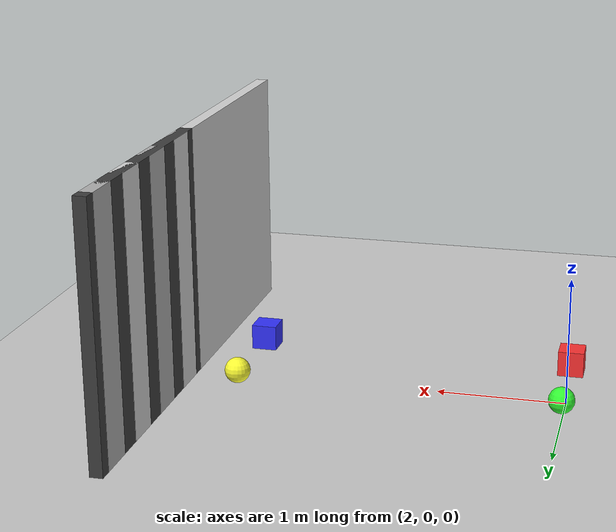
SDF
<?xml version="1.0" ?>
<sdf version="1.6">
  <world name="camera_c8_stereo_complex">
    <scene>
      <ambient>0.7 0.7 0.7 1</ambient>
      <background>0.5 0.5 0.5 1</background>
    </scene>

    <include>
      <uri>model://sun</uri>
    </include>

    <include>
      <uri>model://ground_plane</uri>
    </include>

    <model name="wall_left">
      <pose>5.0 -1.0 1.0 0 0 0</pose>
      <static>true</static>
      <link name="link">
        <collision name="collision">
          <geometry>
            <box><size>0.1 2.0 2.0</size></box>
          </geometry>
        </collision>
        <visual name="visual">
          <geometry>
            <box><size>0.1 2.0 2.0</size></box>
          </geometry>
          <material>
            <ambient>0.85 0.85 0.85 1</ambient>
            <diffuse>0.85 0.85 0.85 1</diffuse>
          </material>
        </visual>
      </link>
    </model>

    <model name="wall_right">
      <pose>5.0 1.0 1.0 0 0 0</pose>
      <static>true</static>
      <link name="link">
        <collision name="collision">
          <geometry>
            <box><size>0.1 2.0 2.0</size></box>
          </geometry>
        </collision>

        <visual name="base">
          <geometry>
            <box><size>0.1 2.0 2.0</size></box>
          </geometry>
          <material>
            <ambient>0.25 0.25 0.25 1</ambient>
            <diffuse>0.25 0.25 0.25 1</diffuse>
          </material>
        </visual>

        <visual name="stripe_1">
          <pose>0 -0.75 0 0 0 0</pose>
          <geometry>
            <box><size>0.101 0.3 2.0</size></box>
          </geometry>
          <material>
            <ambient>0.85 0.85 0.85 1</ambient>
            <diffuse>0.85 0.85 0.85 1</diffuse>
          </material>
        </visual>

        <visual name="stripe_2">
          <pose>0 -0.25 0 0 0 0</pose>
          <geometry>
            <box><size>0.101 0.3 2.0</size></box>
          </geometry>
          <material>
            <ambient>0.70 0.70 0.70 1</ambient>
            <diffuse>0.70 0.70 0.70 1</diffuse>
          </material>
        </visual>

        <visual name="stripe_3">
          <pose>0 0.25 0 0 0 0</pose>
          <geometry>
            <box><size>0.101 0.3 2.0</size></box>
          </geometry>
          <material>
            <ambient>0.85 0.85 0.85 1</ambient>
            <diffuse>0.85 0.85 0.85 1</diffuse>
          </material>
        </visual>

        <visual name="stripe_4">
          <pose>0 0.75 0 0 0 0</pose>
          <geometry>
            <box><size>0.101 0.3 2.0</size></box>
          </geometry>
          <material>
            <ambient>0.70 0.70 0.70 1</ambient>
            <diffuse>0.70 0.70 0.70 1</diffuse>
          </material>
        </visual>
      </link>
    </model>

    <model name="obj_near_cube">
      <pose>2.0 -0.4 0.2 0 0 0</pose>
      <static>true</static>
      <link name="link">
        <collision name="collision">
          <geometry>
            <box><size>0.2 0.2 0.2</size></box>
          </geometry>
        </collision>
        <visual name="visual">
          <geometry>
            <box><size>0.2 0.2 0.2</size></box>
          </geometry>
          <material>
            <ambient>1.0 0.2 0.2 1</ambient>
            <diffuse>1.0 0.2 0.2 1</diffuse>
          </material>
        </visual>
      </link>
    </model>

    <model name="obj_near_sphere">
      <pose>2.0 0.4 0.2 0 0 0</pose>
      <static>true</static>
      <link name="link">
        <collision name="collision">
          <geometry>
            <sphere><radius>0.1</radius></sphere>
          </geometry>
        </collision>
        <visual name="visual">
          <geometry>
            <sphere><radius>0.1</radius></sphere>
          </geometry>
          <material>
            <ambient>0.2 1.0 0.2 1</ambient>
            <diffuse>0.2 1.0 0.2 1</diffuse>
          </material>
        </visual>
      </link>
    </model>

    <model name="obj_far_cube">
      <pose>4.5 -0.4 0.2 0 0 0</pose>
      <static>true</static>
      <link name="link">
        <collision name="collision">
          <geometry>
            <box><size>0.2 0.2 0.2</size></box>
          </geometry>
        </collision>
        <visual name="visual">
          <geometry>
            <box><size>0.2 0.2 0.2</size></box>
          </geometry>
          <material>
            <ambient>0.2 0.2 1.0 1</ambient>
            <diffuse>0.2 0.2 1.0 1</diffuse>
          </material>
        </visual>
      </link>
    </model>

    <model name="obj_far_sphere">
      <pose>4.5 0.4 0.2 0 0 0</pose>
      <static>true</static>
      <link name="link">
        <collision name="collision">
          <geometry>
            <sphere><radius>0.1</radius></sphere>
          </geometry>
        </collision>
        <visual name="visual">
          <geometry>
            <sphere><radius>0.1</radius></sphere>
          </geometry>
          <material>
            <ambient>1.0 1.0 0.2 1</ambient>
            <diffuse>1.0 1.0 0.2 1</diffuse>
          </material>
        </visual>
      </link>
    </model>
  </world>
</sdf>
